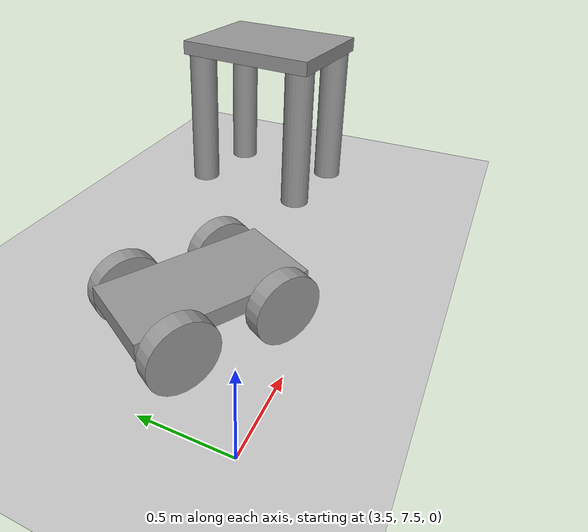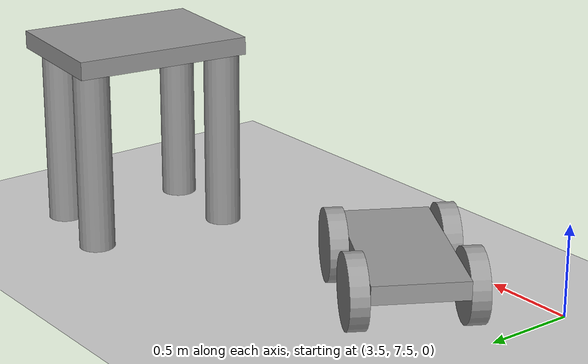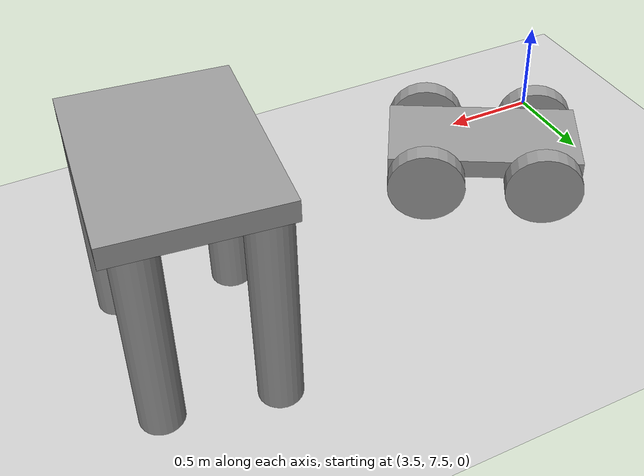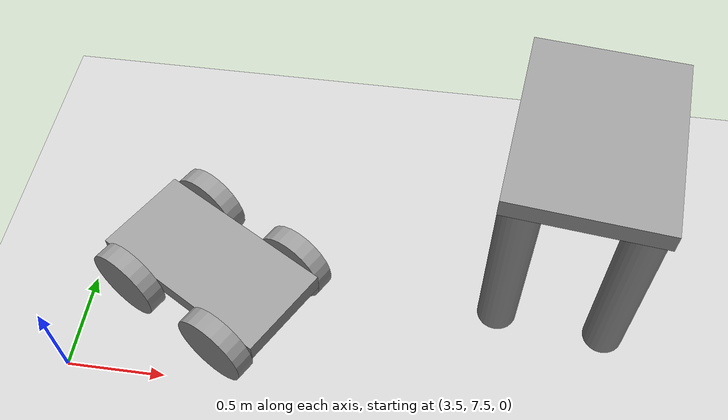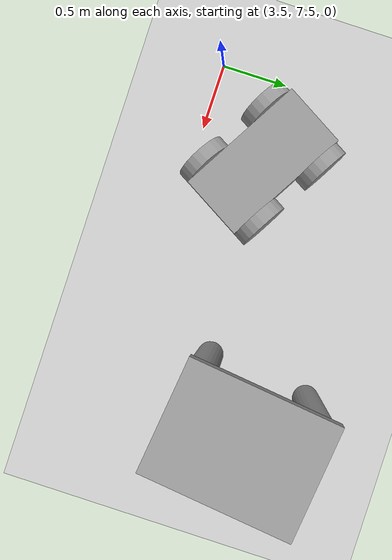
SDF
<sdf version="1.6">
 <world name="default">
  <model name="ground_plane">
   <static>1</static>
   <link name="link">
    <collision name="collision">
     <geometry><plane><normal>0 0 1</normal><size>100 100</size></plane></geometry>
     <surface>
      <contact><collide_bitmask>65535</collide_bitmask></contact>
      <friction><ode><mu>100</mu><mu2>50</mu2></ode></friction>
     </surface>
    </collision>
    <visual name="visual">
     <cast_shadows>0</cast_shadows>
     <geometry><plane><normal>0 0 1</normal><size>100 100</size></plane></geometry>
     <material>
      <script><uri>file://media/materials/scripts/gazebo.material</uri><name>Gazebo/Grey</name></script>
     </material>
    </visual>
   </link>
  </model>
  <model name="Cart_clone">
   <link name="link_0">
    <pose>0 -0 0.048015 0 -0 0</pose>
    <inertial>
     <mass>1</mass>
     <inertia>
      <ixx>0.166667</ixx>
      <ixy>0</ixy>
      <ixz>0</ixz>
      <iyy>0.166667</iyy>
      <iyz>0</iyz>
      <izz>0.166667</izz>
     </inertia>
    </inertial>
    <visual name="visual">
     <geometry><box><size>0.5 1 0.1</size></box></geometry>
     <material>
      <lighting>1</lighting>
      <script><uri>file://media/materials/scripts/gazebo.material</uri><name>Gazebo/Grey</name></script>
      <shader type="pixel"><normal_map>__default__</normal_map></shader>
      <ambient>0.3 0.3 0.3 1</ambient>
      <diffuse>0.7 0.7 0.7 1</diffuse>
      <specular>0.01 0.01 0.01 1</specular>
      <emissive>0 0 0 1</emissive>
     </material>
    </visual>
    <collision name="collision">
     <geometry><box><size>0.5 1 0.1</size></box></geometry>
     <surface>
      <friction>
       <ode><mu>1</mu><mu2>1</mu2><fdir1>0 0 0</fdir1><slip1>0</slip1><slip2>0</slip2></ode>
       <torsional>
        <coefficient>1</coefficient>
        <patch_radius>0</patch_radius>
        <surface_radius>0</surface_radius>
        <use_patch_radius>1</use_patch_radius>
        <ode><slip>0</slip></ode>
       </torsional>
      </friction>
      <bounce><restitution_coefficient>0</restitution_coefficient><threshold>1e+06</threshold></bounce>
      <contact>
       <collide_without_contact>0</collide_without_contact>
       <collide_without_contact_bitmask>1</collide_without_contact_bitmask>
       <collide_bitmask>1</collide_bitmask>
       <ode>
        <soft_cfm>0</soft_cfm>
        <soft_erp>0.2</soft_erp>
        <kp>1e+13</kp>
        <kd>1</kd>
        <max_vel>0.01</max_vel>
        <min_depth>0</min_depth>
       </ode>
       <bullet>
        <split_impulse>1</split_impulse>
        <split_impulse_penetration_threshold>-0.01</split_impulse_penetration_threshold>
        <soft_cfm>0</soft_cfm>
        <soft_erp>0.2</soft_erp>
        <kp>1e+13</kp>
        <kd>1</kd>
       </bullet>
      </contact>
     </surface>
    </collision>
   </link>
   <link name="link_1_clone">
    <pose>-0.300001 -0.299981 -0.012004 1.5708 -9.6e-05 -1.5708</pose>
    <inertial>
     <mass>1</mass>
     <inertia><ixx>0.145833</ixx><ixy>0</ixy><ixz>0</ixz><iyy>0.145833</iyy><iyz>0</iyz><izz>0.125</izz></inertia>
    </inertial>
    <visual name="visual">
     <geometry><cylinder><radius>0.2</radius><length>0.1</length></cylinder></geometry>
     <material>
      <lighting>1</lighting>
      <script><uri>file://media/materials/scripts/gazebo.material</uri><name>Gazebo/Grey</name></script>
      <shader type="pixel"><normal_map>__default__</normal_map></shader>
      <ambient>0.3 0.3 0.3 1</ambient>
      <diffuse>0.7 0.7 0.7 1</diffuse>
      <specular>0.01 0.01 0.01 1</specular>
      <emissive>0 0 0 1</emissive>
     </material>
    </visual>
    <collision name="collision">
     <geometry><cylinder><radius>0.2</radius><length>0.1</length></cylinder></geometry>
     <surface>
      <friction>
       <ode><mu>1</mu><mu2>1</mu2><fdir1>0 0 0</fdir1><slip1>0</slip1><slip2>0</slip2></ode>
       <torsional>
        <coefficient>1</coefficient>
        <patch_radius>0</patch_radius>
        <surface_radius>0</surface_radius>
        <use_patch_radius>1</use_patch_radius>
        <ode><slip>0</slip></ode>
       </torsional>
      </friction>
      <bounce><restitution_coefficient>0</restitution_coefficient><threshold>1e+06</threshold></bounce>
      <contact>
       <collide_without_contact>0</collide_without_contact>
       <collide_without_contact_bitmask>1</collide_without_contact_bitmask>
       <collide_bitmask>1</collide_bitmask>
       <ode>
        <soft_cfm>0</soft_cfm>
        <soft_erp>0.2</soft_erp>
        <kp>1e+13</kp>
        <kd>1</kd>
        <max_vel>0.01</max_vel>
        <min_depth>0</min_depth>
       </ode>
       <bullet>
        <split_impulse>1</split_impulse>
        <split_impulse_penetration_threshold>-0.01</split_impulse_penetration_threshold>
        <soft_cfm>0</soft_cfm>
        <soft_erp>0.2</soft_erp>
        <kp>1e+13</kp>
        <kd>1</kd>
       </bullet>
      </contact>
     </surface>
    </collision>
   </link>
   <link name="link_1_clone_0">
    <pose>-0.300001 0.29998 -0.012004 1.5708 -9.6e-05 -1.5708</pose>
    <inertial>
     <mass>1</mass>
     <inertia><ixx>0.145833</ixx><ixy>0</ixy><ixz>0</ixz><iyy>0.145833</iyy><iyz>0</iyz><izz>0.125</izz></inertia>
    </inertial>
    <visual name="visual">
     <geometry><cylinder><radius>0.2</radius><length>0.1</length></cylinder></geometry>
     <material>
      <lighting>1</lighting>
      <script><uri>file://media/materials/scripts/gazebo.material</uri><name>Gazebo/Grey</name></script>
      <shader type="pixel"><normal_map>__default__</normal_map></shader>
      <ambient>0.3 0.3 0.3 1</ambient>
      <diffuse>0.7 0.7 0.7 1</diffuse>
      <specular>0.01 0.01 0.01 1</specular>
      <emissive>0 0 0 1</emissive>
     </material>
    </visual>
    <collision name="collision">
     <geometry><cylinder><radius>0.2</radius><length>0.1</length></cylinder></geometry>
     <surface>
      <friction>
       <ode><mu>1</mu><mu2>1</mu2><fdir1>0 0 0</fdir1><slip1>0</slip1><slip2>0</slip2></ode>
       <torsional>
        <coefficient>1</coefficient>
        <patch_radius>0</patch_radius>
        <surface_radius>0</surface_radius>
        <use_patch_radius>1</use_patch_radius>
        <ode><slip>0</slip></ode>
       </torsional>
      </friction>
      <bounce><restitution_coefficient>0</restitution_coefficient><threshold>1e+06</threshold></bounce>
      <contact>
       <collide_without_contact>0</collide_without_contact>
       <collide_without_contact_bitmask>1</collide_without_contact_bitmask>
       <collide_bitmask>1</collide_bitmask>
       <ode>
        <soft_cfm>0</soft_cfm>
        <soft_erp>0.2</soft_erp>
        <kp>1e+13</kp>
        <kd>1</kd>
        <max_vel>0.01</max_vel>
        <min_depth>0</min_depth>
       </ode>
       <bullet>
        <split_impulse>1</split_impulse>
        <split_impulse_penetration_threshold>-0.01</split_impulse_penetration_threshold>
        <soft_cfm>0</soft_cfm>
        <soft_erp>0.2</soft_erp>
        <kp>1e+13</kp>
        <kd>1</kd>
       </bullet>
      </contact>
     </surface>
    </collision>
   </link>
   <link name="link_1_clone_1">
    <pose>0.300002 0.29998 -0.012004 1.5708 -9.6e-05 -1.5708</pose>
    <inertial>
     <mass>1</mass>
     <inertia><ixx>0.145833</ixx><ixy>0</ixy><ixz>0</ixz><iyy>0.145833</iyy><iyz>0</iyz><izz>0.125</izz></inertia>
    </inertial>
    <visual name="visual">
     <geometry><cylinder><radius>0.2</radius><length>0.1</length></cylinder></geometry>
     <material>
      <lighting>1</lighting>
      <script><uri>file://media/materials/scripts/gazebo.material</uri><name>Gazebo/Grey</name></script>
      <shader type="pixel"><normal_map>__default__</normal_map></shader>
      <ambient>0.3 0.3 0.3 1</ambient>
      <diffuse>0.7 0.7 0.7 1</diffuse>
      <specular>0.01 0.01 0.01 1</specular>
      <emissive>0 0 0 1</emissive>
     </material>
    </visual>
    <collision name="collision">
     <geometry><cylinder><radius>0.2</radius><length>0.1</length></cylinder></geometry>
     <surface>
      <friction>
       <ode><mu>1</mu><mu2>1</mu2><fdir1>0 0 0</fdir1><slip1>0</slip1><slip2>0</slip2></ode>
       <torsional>
        <coefficient>1</coefficient>
        <patch_radius>0</patch_radius>
        <surface_radius>0</surface_radius>
        <use_patch_radius>1</use_patch_radius>
        <ode><slip>0</slip></ode>
       </torsional>
      </friction>
      <bounce><restitution_coefficient>0</restitution_coefficient><threshold>1e+06</threshold></bounce>
      <contact>
       <collide_without_contact>0</collide_without_contact>
       <collide_without_contact_bitmask>1</collide_without_contact_bitmask>
       <collide_bitmask>1</collide_bitmask>
       <ode>
        <soft_cfm>0</soft_cfm>
        <soft_erp>0.2</soft_erp>
        <kp>1e+13</kp>
        <kd>1</kd>
        <max_vel>0.01</max_vel>
        <min_depth>0</min_depth>
       </ode>
       <bullet>
        <split_impulse>1</split_impulse>
        <split_impulse_penetration_threshold>-0.01</split_impulse_penetration_threshold>
        <soft_cfm>0</soft_cfm>
        <soft_erp>0.2</soft_erp>
        <kp>1e+13</kp>
        <kd>1</kd>
       </bullet>
      </contact>
     </surface>
    </collision>
   </link>
   <link name="link_1_clone_1_clone">
    <pose>0.300002 -0.299981 -0.012004 1.5708 -9.6e-05 -1.5708</pose>
    <inertial>
     <mass>1</mass>
     <inertia><ixx>0.145833</ixx><ixy>0</ixy><ixz>0</ixz><iyy>0.145833</iyy><iyz>0</iyz><izz>0.125</izz></inertia>
    </inertial>
    <visual name="visual">
     <geometry><cylinder><radius>0.2</radius><length>0.1</length></cylinder></geometry>
     <material>
      <lighting>1</lighting>
      <script><uri>file://media/materials/scripts/gazebo.material</uri><name>Gazebo/Grey</name></script>
      <shader type="pixel"><normal_map>__default__</normal_map></shader>
      <ambient>0.3 0.3 0.3 1</ambient>
      <diffuse>0.7 0.7 0.7 1</diffuse>
      <specular>0.01 0.01 0.01 1</specular>
      <emissive>0 0 0 1</emissive>
     </material>
    </visual>
    <collision name="collision">
     <geometry><cylinder><radius>0.2</radius><length>0.1</length></cylinder></geometry>
     <surface>
      <friction>
       <ode><mu>1</mu><mu2>1</mu2><fdir1>0 0 0</fdir1><slip1>0</slip1><slip2>0</slip2></ode>
       <torsional>
        <coefficient>1</coefficient>
        <patch_radius>0</patch_radius>
        <surface_radius>0</surface_radius>
        <use_patch_radius>1</use_patch_radius>
        <ode><slip>0</slip></ode>
       </torsional>
      </friction>
      <bounce><restitution_coefficient>0</restitution_coefficient><threshold>1e+06</threshold></bounce>
      <contact>
       <collide_without_contact>0</collide_without_contact>
       <collide_without_contact_bitmask>1</collide_without_contact_bitmask>
       <collide_bitmask>1</collide_bitmask>
       <ode>
        <soft_cfm>0</soft_cfm>
        <soft_erp>0.2</soft_erp>
        <kp>1e+13</kp>
        <kd>1</kd>
        <max_vel>0.01</max_vel>
        <min_depth>0</min_depth>
       </ode>
       <bullet>
        <split_impulse>1</split_impulse>
        <split_impulse_penetration_threshold>-0.01</split_impulse_penetration_threshold>
        <soft_cfm>0</soft_cfm>
        <soft_erp>0.2</soft_erp>
        <kp>1e+13</kp>
        <kd>1</kd>
       </bullet>
      </contact>
     </surface>
    </collision>
   </link>
   <joint name="link_0_JOINT_0" type="revolute">
    <parent>link_0</parent>
    <child>link_1_clone</child>
    <axis>
     <xyz>0 0 1</xyz>
     <use_parent_model_frame>0</use_parent_model_frame>
     <limit>
      <lower>-1.79769e+308</lower>
      <upper>1.79769e+308</upper>
      <effort>-1</effort>
      <velocity>-1</velocity>
     </limit>
     <dynamics>
      <spring_reference>0</spring_reference>
      <spring_stiffness>0</spring_stiffness>
      <damping>0</damping>
     </dynamics>
    </axis>
    <physics>
     <ode><limit><cfm>0</cfm><erp>0.2</erp></limit><suspension><cfm>0</cfm><erp>0.2</erp></suspension></ode>
    </physics>
   </joint>
   <joint name="link_0_JOINT_1" type="revolute">
    <parent>link_0</parent>
    <child>link_1_clone_0</child>
    <axis>
     <xyz>0 0 1</xyz>
     <use_parent_model_frame>0</use_parent_model_frame>
     <limit>
      <lower>-1.79769e+308</lower>
      <upper>1.79769e+308</upper>
      <effort>-1</effort>
      <velocity>-1</velocity>
     </limit>
     <dynamics>
      <spring_reference>0</spring_reference>
      <spring_stiffness>0</spring_stiffness>
      <damping>0</damping>
     </dynamics>
    </axis>
    <physics>
     <ode><limit><cfm>0</cfm><erp>0.2</erp></limit><suspension><cfm>0</cfm><erp>0.2</erp></suspension></ode>
    </physics>
   </joint>
   <joint name="link_0_JOINT_2" type="revolute">
    <parent>link_0</parent>
    <child>link_1_clone_1</child>
    <axis>
     <xyz>0 0 1</xyz>
     <use_parent_model_frame>0</use_parent_model_frame>
     <limit>
      <lower>-1.79769e+308</lower>
      <upper>1.79769e+308</upper>
      <effort>-1</effort>
      <velocity>-1</velocity>
     </limit>
     <dynamics>
      <spring_reference>0</spring_reference>
      <spring_stiffness>0</spring_stiffness>
      <damping>0</damping>
     </dynamics>
    </axis>
    <physics>
     <ode><limit><cfm>0</cfm><erp>0.2</erp></limit><suspension><cfm>0</cfm><erp>0.2</erp></suspension></ode>
    </physics>
   </joint>
   <joint name="link_0_JOINT_5" type="revolute">
    <parent>link_0</parent>
    <child>link_1_clone_1_clone</child>
    <axis>
     <xyz>0 0 1</xyz>
     <use_parent_model_frame>0</use_parent_model_frame>
     <limit>
      <lower>-1.79769e+308</lower>
      <upper>1.79769e+308</upper>
      <effort>-1</effort>
      <velocity>-1</velocity>
     </limit>
     <dynamics>
      <spring_reference>0</spring_reference>
      <spring_stiffness>0</spring_stiffness>
      <damping>0</damping>
     </dynamics>
    </axis>
    <physics>
     <ode><limit><cfm>0</cfm><erp>0.2</erp></limit><suspension><cfm>0</cfm><erp>0.2</erp></suspension></ode>
    </physics>
   </joint>
   <static>0</static>
   <pose>4.15523 8.02364 0.211998 -1.2e-05 -0 1.04534</pose>
  </model>
  <model name="Walker">
   <link name="link_2">
    <pose>0.008 0.008 0.440001 0 -0 0</pose>
    <inertial>
     <mass>1</mass>
     <inertia>
      <ixx>0.166667</ixx>
      <ixy>0</ixy>
      <ixz>0</ixz>
      <iyy>0.166667</iyy>
      <iyz>0</iyz>
      <izz>0.166667</izz>
     </inertia>
    </inertial>
    <visual name="visual">
     <geometry><box><size>0.75 1 0.1</size></box></geometry>
     <material>
      <lighting>1</lighting>
      <script><uri>file://media/materials/scripts/gazebo.material</uri><name>Gazebo/Grey</name></script>
      <shader type="pixel"><normal_map>__default__</normal_map></shader>
      <ambient>0.3 0.3 0.3 1</ambient>
      <diffuse>0.7 0.7 0.7 1</diffuse>
      <specular>0.01 0.01 0.01 1</specular>
      <emissive>0 0 0 1</emissive>
     </material>
    </visual>
    <collision name="collision">
     <geometry><box><size>0.75 1 0.1</size></box></geometry>
     <surface>
      <friction>
       <ode><mu>1</mu><mu2>1</mu2><fdir1>0 0 0</fdir1><slip1>0</slip1><slip2>0</slip2></ode>
       <torsional>
        <coefficient>1</coefficient>
        <patch_radius>0</patch_radius>
        <surface_radius>0</surface_radius>
        <use_patch_radius>1</use_patch_radius>
        <ode><slip>0</slip></ode>
       </torsional>
      </friction>
      <bounce><restitution_coefficient>0</restitution_coefficient><threshold>1e+06</threshold></bounce>
      <contact>
       <collide_without_contact>0</collide_without_contact>
       <collide_without_contact_bitmask>1</collide_without_contact_bitmask>
       <collide_bitmask>1</collide_bitmask>
       <ode>
        <soft_cfm>0</soft_cfm>
        <soft_erp>0.2</soft_erp>
        <kp>1e+13</kp>
        <kd>1</kd>
        <max_vel>0.01</max_vel>
        <min_depth>0</min_depth>
       </ode>
       <bullet>
        <split_impulse>1</split_impulse>
        <split_impulse_penetration_threshold>-0.01</split_impulse_penetration_threshold>
        <soft_cfm>0</soft_cfm>
        <soft_erp>0.2</soft_erp>
        <kp>1e+13</kp>
        <kd>1</kd>
       </bullet>
      </contact>
     </surface>
    </collision>
   </link>
   <link name="link_3">
    <pose>0.243 0.368 -0.109999 0 -0 0</pose>
    <inertial>
     <mass>1</mass>
     <inertia><ixx>0.145833</ixx><ixy>0</ixy><ixz>0</ixz><iyy>0.145833</iyy><iyz>0</iyz><izz>0.125</izz></inertia>
    </inertial>
    <visual name="visual">
     <geometry><cylinder><radius>0.1</radius><length>1</length></cylinder></geometry>
     <material>
      <lighting>1</lighting>
      <script><uri>file://media/materials/scripts/gazebo.material</uri><name>Gazebo/Grey</name></script>
      <shader type="pixel"><normal_map>__default__</normal_map></shader>
      <ambient>0.3 0.3 0.3 1</ambient>
      <diffuse>0.7 0.7 0.7 1</diffuse>
      <specular>0.01 0.01 0.01 1</specular>
      <emissive>0 0 0 1</emissive>
     </material>
    </visual>
    <collision name="collision">
     <geometry><cylinder><radius>0.1</radius><length>1</length></cylinder></geometry>
     <surface>
      <friction>
       <ode><mu>1</mu><mu2>1</mu2><fdir1>0 0 0</fdir1><slip1>0</slip1><slip2>0</slip2></ode>
       <torsional>
        <coefficient>1</coefficient>
        <patch_radius>0</patch_radius>
        <surface_radius>0</surface_radius>
        <use_patch_radius>1</use_patch_radius>
        <ode><slip>0</slip></ode>
       </torsional>
      </friction>
      <bounce><restitution_coefficient>0</restitution_coefficient><threshold>1e+06</threshold></bounce>
      <contact>
       <collide_without_contact>0</collide_without_contact>
       <collide_without_contact_bitmask>1</collide_without_contact_bitmask>
       <collide_bitmask>1</collide_bitmask>
       <ode>
        <soft_cfm>0</soft_cfm>
        <soft_erp>0.2</soft_erp>
        <kp>1e+13</kp>
        <kd>1</kd>
        <max_vel>0.01</max_vel>
        <min_depth>0</min_depth>
       </ode>
       <bullet>
        <split_impulse>1</split_impulse>
        <split_impulse_penetration_threshold>-0.01</split_impulse_penetration_threshold>
        <soft_cfm>0</soft_cfm>
        <soft_erp>0.2</soft_erp>
        <kp>1e+13</kp>
        <kd>1</kd>
       </bullet>
      </contact>
     </surface>
    </collision>
   </link>
   <link name="link_3_clone">
    <pose>0.283 -0.392001 -0.109999 0 -0 0</pose>
    <inertial>
     <mass>1</mass>
     <inertia><ixx>0.145833</ixx><ixy>0</ixy><ixz>0</ixz><iyy>0.145833</iyy><iyz>0</iyz><izz>0.125</izz></inertia>
    </inertial>
    <visual name="visual">
     <geometry><cylinder><radius>0.1</radius><length>1</length></cylinder></geometry>
     <material>
      <lighting>1</lighting>
      <script><uri>file://media/materials/scripts/gazebo.material</uri><name>Gazebo/Grey</name></script>
      <shader type="pixel"><normal_map>__default__</normal_map></shader>
      <ambient>0.3 0.3 0.3 1</ambient>
      <diffuse>0.7 0.7 0.7 1</diffuse>
      <specular>0.01 0.01 0.01 1</specular>
      <emissive>0 0 0 1</emissive>
     </material>
    </visual>
    <collision name="collision">
     <geometry><cylinder><radius>0.1</radius><length>1</length></cylinder></geometry>
     <surface>
      <friction>
       <ode><mu>1</mu><mu2>1</mu2><fdir1>0 0 0</fdir1><slip1>0</slip1><slip2>0</slip2></ode>
       <torsional>
        <coefficient>1</coefficient>
        <patch_radius>0</patch_radius>
        <surface_radius>0</surface_radius>
        <use_patch_radius>1</use_patch_radius>
        <ode><slip>0</slip></ode>
       </torsional>
      </friction>
      <bounce><restitution_coefficient>0</restitution_coefficient><threshold>1e+06</threshold></bounce>
      <contact>
       <collide_without_contact>0</collide_without_contact>
       <collide_without_contact_bitmask>1</collide_without_contact_bitmask>
       <collide_bitmask>1</collide_bitmask>
       <ode>
        <soft_cfm>0</soft_cfm>
        <soft_erp>0.2</soft_erp>
        <kp>1e+13</kp>
        <kd>1</kd>
        <max_vel>0.01</max_vel>
        <min_depth>0</min_depth>
       </ode>
       <bullet>
        <split_impulse>1</split_impulse>
        <split_impulse_penetration_threshold>-0.01</split_impulse_penetration_threshold>
        <soft_cfm>0</soft_cfm>
        <soft_erp>0.2</soft_erp>
        <kp>1e+13</kp>
        <kd>1</kd>
       </bullet>
      </contact>
     </surface>
    </collision>
   </link>
   <link name="link_3_clone_0">
    <pose>-0.267 0.407999 -0.109999 0 -0 0</pose>
    <inertial>
     <mass>1</mass>
     <inertia><ixx>0.145833</ixx><ixy>0</ixy><ixz>0</ixz><iyy>0.145833</iyy><iyz>0</iyz><izz>0.125</izz></inertia>
    </inertial>
    <visual name="visual">
     <geometry><cylinder><radius>0.1</radius><length>1</length></cylinder></geometry>
     <material>
      <lighting>1</lighting>
      <script><uri>file://media/materials/scripts/gazebo.material</uri><name>Gazebo/Grey</name></script>
      <shader type="pixel"><normal_map>__default__</normal_map></shader>
      <ambient>0.3 0.3 0.3 1</ambient>
      <diffuse>0.7 0.7 0.7 1</diffuse>
      <specular>0.01 0.01 0.01 1</specular>
      <emissive>0 0 0 1</emissive>
     </material>
    </visual>
    <collision name="collision">
     <geometry><cylinder><radius>0.1</radius><length>1</length></cylinder></geometry>
     <surface>
      <friction>
       <ode><mu>1</mu><mu2>1</mu2><fdir1>0 0 0</fdir1><slip1>0</slip1><slip2>0</slip2></ode>
       <torsional>
        <coefficient>1</coefficient>
        <patch_radius>0</patch_radius>
        <surface_radius>0</surface_radius>
        <use_patch_radius>1</use_patch_radius>
        <ode><slip>0</slip></ode>
       </torsional>
      </friction>
      <bounce><restitution_coefficient>0</restitution_coefficient><threshold>1e+06</threshold></bounce>
      <contact>
       <collide_without_contact>0</collide_without_contact>
       <collide_without_contact_bitmask>1</collide_without_contact_bitmask>
       <collide_bitmask>1</collide_bitmask>
       <ode>
        <soft_cfm>0</soft_cfm>
        <soft_erp>0.2</soft_erp>
        <kp>1e+13</kp>
        <kd>1</kd>
        <max_vel>0.01</max_vel>
        <min_depth>0</min_depth>
       </ode>
       <bullet>
        <split_impulse>1</split_impulse>
        <split_impulse_penetration_threshold>-0.01</split_impulse_penetration_threshold>
        <soft_cfm>0</soft_cfm>
        <soft_erp>0.2</soft_erp>
        <kp>1e+13</kp>
        <kd>1</kd>
       </bullet>
      </contact>
     </surface>
    </collision>
   </link>
   <link name="link_3_clone_1">
    <pose>-0.267 -0.392001 -0.109999 0 -0 0</pose>
    <inertial>
     <mass>1</mass>
     <inertia><ixx>0.145833</ixx><ixy>0</ixy><ixz>0</ixz><iyy>0.145833</iyy><iyz>0</iyz><izz>0.125</izz></inertia>
    </inertial>
    <visual name="visual">
     <geometry><cylinder><radius>0.1</radius><length>1</length></cylinder></geometry>
     <material>
      <lighting>1</lighting>
      <script><uri>file://media/materials/scripts/gazebo.material</uri><name>Gazebo/Grey</name></script>
      <shader type="pixel"><normal_map>__default__</normal_map></shader>
      <ambient>0.3 0.3 0.3 1</ambient>
      <diffuse>0.7 0.7 0.7 1</diffuse>
      <specular>0.01 0.01 0.01 1</specular>
      <emissive>0 0 0 1</emissive>
     </material>
    </visual>
    <collision name="collision">
     <geometry><cylinder><radius>0.1</radius><length>1</length></cylinder></geometry>
     <surface>
      <friction>
       <ode><mu>1</mu><mu2>1</mu2><fdir1>0 0 0</fdir1><slip1>0</slip1><slip2>0</slip2></ode>
       <torsional>
        <coefficient>1</coefficient>
        <patch_radius>0</patch_radius>
        <surface_radius>0</surface_radius>
        <use_patch_radius>1</use_patch_radius>
        <ode><slip>0</slip></ode>
       </torsional>
      </friction>
      <bounce><restitution_coefficient>0</restitution_coefficient><threshold>1e+06</threshold></bounce>
      <contact>
       <collide_without_contact>0</collide_without_contact>
       <collide_without_contact_bitmask>1</collide_without_contact_bitmask>
       <collide_bitmask>1</collide_bitmask>
       <ode>
        <soft_cfm>0</soft_cfm>
        <soft_erp>0.2</soft_erp>
        <kp>1e+13</kp>
        <kd>1</kd>
        <max_vel>0.01</max_vel>
        <min_depth>0</min_depth>
       </ode>
       <bullet>
        <split_impulse>1</split_impulse>
        <split_impulse_penetration_threshold>-0.01</split_impulse_penetration_threshold>
        <soft_cfm>0</soft_cfm>
        <soft_erp>0.2</soft_erp>
        <kp>1e+13</kp>
        <kd>1</kd>
       </bullet>
      </contact>
     </surface>
    </collision>
   </link>
   <joint name="link_2_JOINT_6" type="revolute">
    <parent>link_2</parent>
    <child>link_3</child>
    <axis>
     <xyz>1 0 0</xyz>
     <use_parent_model_frame>0</use_parent_model_frame>
     <limit>
      <lower>-1.79769e+308</lower>
      <upper>1.79769e+308</upper>
      <effort>-1</effort>
      <velocity>-1</velocity>
     </limit>
     <dynamics>
      <spring_reference>0</spring_reference>
      <spring_stiffness>0</spring_stiffness>
      <damping>0</damping>
     </dynamics>
    </axis>
    <physics>
     <ode><limit><cfm>0</cfm><erp>0.2</erp></limit><suspension><cfm>0</cfm><erp>0.2</erp></suspension></ode>
    </physics>
   </joint>
   <joint name="link_2_JOINT_7" type="revolute">
    <parent>link_2</parent>
    <child>link_3_clone_0</child>
    <axis>
     <xyz>1 0 0</xyz>
     <use_parent_model_frame>0</use_parent_model_frame>
     <limit>
      <lower>-1.79769e+308</lower>
      <upper>1.79769e+308</upper>
      <effort>-1</effort>
      <velocity>-1</velocity>
     </limit>
     <dynamics>
      <spring_reference>0</spring_reference>
      <spring_stiffness>0</spring_stiffness>
      <damping>0</damping>
     </dynamics>
    </axis>
    <physics>
     <ode><limit><cfm>0</cfm><erp>0.2</erp></limit><suspension><cfm>0</cfm><erp>0.2</erp></suspension></ode>
    </physics>
   </joint>
   <joint name="link_2_JOINT_8" type="revolute">
    <parent>link_2</parent>
    <child>link_3_clone</child>
    <axis>
     <xyz>1 0 0</xyz>
     <use_parent_model_frame>0</use_parent_model_frame>
     <limit>
      <lower>-1.79769e+308</lower>
      <upper>1.79769e+308</upper>
      <effort>-1</effort>
      <velocity>-1</velocity>
     </limit>
     <dynamics>
      <spring_reference>0</spring_reference>
      <spring_stiffness>0</spring_stiffness>
      <damping>0</damping>
     </dynamics>
    </axis>
    <physics>
     <ode><limit><cfm>0</cfm><erp>0.2</erp></limit><suspension><cfm>0</cfm><erp>0.2</erp></suspension></ode>
    </physics>
   </joint>
   <joint name="link_2_JOINT_9" type="revolute">
    <parent>link_2</parent>
    <child>link_3_clone_1</child>
    <axis>
     <xyz>1 0 0</xyz>
     <use_parent_model_frame>0</use_parent_model_frame>
     <limit>
      <lower>-1.79769e+308</lower>
      <upper>1.79769e+308</upper>
      <effort>-1</effort>
      <velocity>-1</velocity>
     </limit>
     <dynamics>
      <spring_reference>0</spring_reference>
      <spring_stiffness>0</spring_stiffness>
      <damping>0</damping>
     </dynamics>
    </axis>
    <physics>
     <ode><limit><cfm>0</cfm><erp>0.2</erp></limit><suspension><cfm>0</cfm><erp>0.2</erp></suspension></ode>
    </physics>
   </joint>
   <static>0</static>
   <pose>5.94083 8.44628 0.609999 -0 -1e-06 -0.115844</pose>
  </model>
 </world>
</sdf>
